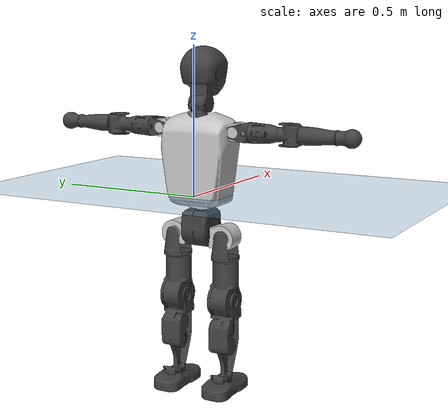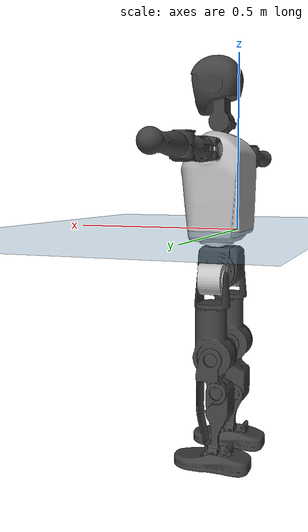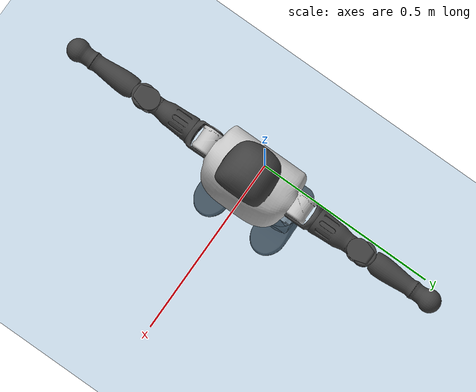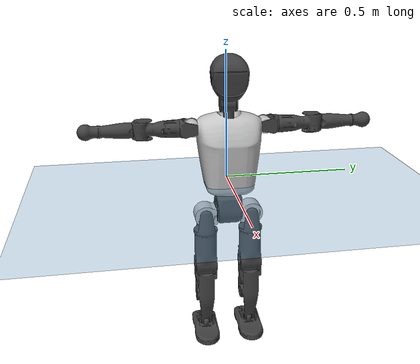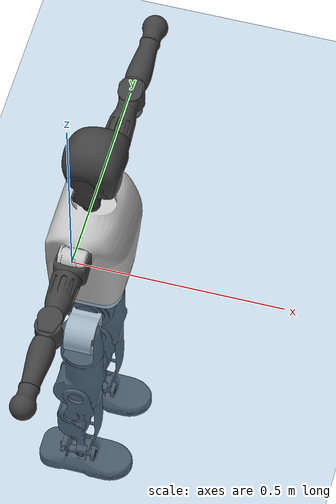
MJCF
<mujoco model="T1">
  <compiler angle="radian" assetdir="assets" balanceinertia="true" inertiafromgeom="false"/>

  <option timestep="0.005" density="1.2" viscosity="2e-05"/>

  <size nkey="1"/>

  <visual>
    <quality shadowsize="8192"/>
    <map shadowclip="0.5"/>
  </visual>

  <default>
    <default class="/">
      <joint armature="0.01" damping="0.01" frictionloss="0.1"/>
      <geom contype="0" conaffinity="0" group="1" solref="-1000 -80"/>
      <site size="0.01 0.005 0.005" group="5"/>
      <general forcelimited="true" biastype="affine" gainprm="25" biasprm="0 -25 -0.6"/>
      <default class="t1">
        <geom rgba="0.25 0.25 0.25 1"/>
        <default class="visual">
          <geom type="mesh" group="2"/>
        </default>
        <default class="collision">
          <geom group="3"/>
        </default>
        <default class="foot">
          <geom size="0.1115 0.05 0.015" type="box" condim="6" group="4" priority="1" solimp="0.015 1 0.015"/>
        </default>
        <default class="reward_collision_sphere">
          <geom group="5" rgba="1 0 0 1"/>
        </default>
      </default>
    </default>
  </default>

  <asset>
    <texture type="skybox" colorspace="auto" name="//unnamed_texture_0" builtin="gradient" rgb1="0.95 0.95 0.95" rgb2="0.95 0.95 0.95" width="100" height="600"/>
    <texture type="2d" colorspace="auto" name="texplane" builtin="checker" rgb1="0.345 0.575 0.748" rgb2="0.345 0.575 0.748" markrgb="1 1 1" width="512" height="512"/>
    <material name="MatPlane" class="/" texture="texplane" texuniform="true" texrepeat="2 2" specular="0.9"/>
    <mesh name="Trunk" class="/" file="Trunk.stl"/>
    <mesh name="H1" class="/" file="H1.stl"/>
    <mesh name="H2" class="/" file="H2.stl"/>
    <mesh name="AL1" class="/" file="AL1.stl"/>
    <mesh name="AL2" class="/" file="AL2.stl"/>
    <mesh name="AL3" class="/" file="AL3.stl"/>
    <mesh name="left_hand_link" class="/" file="left_hand_link.stl"/>
    <mesh name="AR1" class="/" file="AR1.stl"/>
    <mesh name="AR2" class="/" file="AR2.stl"/>
    <mesh name="AR3" class="/" file="AR3.stl"/>
    <mesh name="right_hand_link" class="/" file="right_hand_link.stl"/>
    <mesh name="Waist" class="/" file="Waist.stl"/>
    <mesh name="Hip_Pitch_Left" class="/" file="Hip_Pitch_Left.stl"/>
    <mesh name="Hip_Roll_Left" class="/" file="Hip_Roll_Left.stl"/>
    <mesh name="Hip_Yaw_Left" class="/" file="Hip_Yaw_Left.stl"/>
    <mesh name="Shank_Left" class="/" file="Shank_Left.stl"/>
    <mesh name="Ankle_Cross_Left" class="/" file="Ankle_Cross_Left.stl"/>
    <mesh name="left_foot_link" class="/" file="left_foot_link.stl"/>
    <mesh name="Hip_Pitch_Right" class="/" file="Hip_Pitch_Right.stl"/>
    <mesh name="Hip_Roll_Right" class="/" file="Hip_Roll_Right.stl"/>
    <mesh name="Hip_Yaw_Right" class="/" file="Hip_Yaw_Right.stl"/>
    <mesh name="Shank_Right" class="/" file="Shank_Right.stl"/>
    <mesh name="Ankle_Cross_Right" class="/" file="Ankle_Cross_Right.stl"/>
    <mesh name="right_foot_link" class="/" file="right_foot_link.stl"/>
  </asset>

  <worldbody>
    <geom name="floor" class="/" size="100 100 0.125" type="plane" group="0" material="MatPlane"/>
    <light name="toplight_shadow" class="/" pos="0 0 5" dir="0.0990148 0.0990148 -0.990148" type="directional" ambient="0.04 0.04 0.04" diffuse="0.55 0.55 0.55" specular="0.12 0.12 0.12"/>
    <light name="toplight_fill" class="/" pos="0 0 5" dir="0.0990148 0.0990148 -0.990148" type="directional" castshadow="false" ambient="0.04 0.04 0.04" diffuse="0.3 0.3 0.3" specular="0.08 0.08 0.08"/>
    <body name="trunk" childclass="t1" pos="-4.47475e-05 -0.000169841 0.000769985" quat="1 -4.74266e-05 6.61136e-05 7.77618e-05">
      <inertial pos="0.0439644 -0.00137201 0.107151" quat="0.999953 0.000529771 -0.00967131 -0.000632913" mass="8.66277" diaginertia="0.0314066 0.0416764 0.0600872"/>
      <joint name="//unnamed_joint_0" type="free" armature="0" damping="0" frictionloss="0"/>
      <geom name="//unnamed_geom_1" class="visual" rgba="0.76 0.76 0.76 1" mesh="Trunk"/>
      <geom name="//unnamed_geom_2" class="collision" size="0.067524 0.090032 0.135048" pos="0.0483525 0 0.121665" type="box"/>
      <geom name="//unnamed_geom_3" class="reward_collision_sphere" size="0.103537" pos="0.0483525 0 0.101388"/>
      <geom name="//unnamed_geom_4" class="reward_collision_sphere" size="0.0135048" pos="0.0483525 0.0749028 0"/>
      <geom name="//unnamed_geom_5" class="reward_collision_sphere" size="0.0135048" pos="0.0483525 -0.0749028 0"/>
      <geom name="//unnamed_geom_6" class="reward_collision_sphere" size="0.0135048" pos="0.0483525 0.0942894 0.182498"/>
      <geom name="//unnamed_geom_7" class="reward_collision_sphere" size="0.0135048" pos="0.0483525 -0.0942894 0.182498"/>
      <site name="imu" pos="0.000213832 0.00754669 0.00496432" size="0.0090032"/>
      <camera name="track" pos="0 -1.76242 0" quat="0.707107 0.707107 0 0" mode="trackcom"/>
      <camera name="ego_camera" pos="0.0983167 0 0.425828" quat="-0.5 -0.5 0.5 0.5"/>
      <body name="H1" pos="0.0501541 -7.66215e-05 0.246935" quat="1 -5.93663e-05 -0.000276017 -0.000589603">
        <inertial pos="-0.00066676 -0.00124005 0.0572427" quat="0.764987 -0.0152481 -0.00239084 0.643861" mass="0.320198" diaginertia="8.34945e-05 0.000118745 0.000164094"/>
        <joint name="AAHead_yaw" pos="0 0 0" axis="0.00401984 -0.00396698 0.999984" range="-1.59038 1.61275" armature="0.00886794" damping="0.00478315" frictionloss="0.0901339"/>
        <geom name="//unnamed_geom_8" class="visual" mesh="H1"/>
        <body name="H2" pos="-0.000644155 0.000217093 0.0600976" quat="0.999999 -0.00101982 -0.000548473 2.18096e-05">
          <inertial pos="0.00632459 0.000516221 0.10059" quat="0.988485 0.105908 -0.074571 -0.0782372" mass="0.459916" diaginertia="0.000692881 0.00103238 0.00180574"/>
          <joint name="Head_pitch" pos="0 0 0" axis="-0.00250221 -0.999995 -0.00174709" range="-1.23226 0.343461" armature="0.00906348" damping="0.00955721" frictionloss="0.089386"/>
          <geom name="//unnamed_geom_9" class="visual" mesh="H2"/>
          <geom name="//unnamed_geom_10" class="collision" size="0.0720256" pos="0.00805875 0 0.111526"/>
          <geom name="//unnamed_geom_11" class="reward_collision_sphere" size="0.0810288" pos="0.0161175 0 0.101388"/>
        </body>
      </body>
      <body name="AL1" pos="0.0483256 0.0938968 0.222113" quat="1 0.000209092 0.000429984 -0.000127291">
        <inertial pos="-0.00154964 0.0396332 -0.000161503" quat="0.504558 0.50165 -0.497866 0.49588" mass="0.386326" diaginertia="0.00046573 0.000683388 0.000310118"/>
        <joint name="Left_Shoulder_Pitch" pos="0 0 0" axis="0.000156342 1 -0.000204508" range="-3.26764 1.22431" armature="0.00884641" damping="0.00990858" frictionloss="0.0938926"/>
        <geom name="//unnamed_geom_12" class="visual" rgba="0.76 0.76 0.76 1" mesh="AL1"/>
        <body name="AL2" pos="0.0017379 0.041462 6.05621e-05" quat="1 -0.000548667 0.000649554 4.04457e-06">
          <inertial pos="0.00534914 0.0328206 -0.000330383" quat="0.486305 0.511691 -0.489928 0.511518" mass="0.11437" diaginertia="0.000133979 0.000178526 0.000185245"/>
          <joint name="Left_Shoulder_Roll" pos="0 0 0" axis="-0.999995 -0.0014229 -0.00284905" range="-1.56961 1.74786" armature="0.0090532" damping="0.00952557" frictionloss="0.0880871"/>
          <geom name="//unnamed_geom_13" class="visual" mesh="AL2"/>
          <body name="AL3" pos="0.0012003 0.0545949 -0.000463641" quat="1 0.000241556 0.00064134 -0.000421029">
            <inertial pos="0.00148841 0.0750392 -0.00111396" quat="0.714501 0.699635 0.000239593 -0.00061755" mass="0.764791" diaginertia="0.00454794 0.00720139 0.000687722"/>
            <joint name="Left_Elbow_Pitch" pos="0 0 0" axis="-0.00162151 -0.99999 0.0041906" range="-2.28172 2.31197" armature="0.00952074" damping="0.0104925" frictionloss="0.0998504"/>
            <geom name="//unnamed_geom_14" class="visual" mesh="AL3"/>
            <geom name="//unnamed_geom_15" class="collision" size="0.0270096 0.067524" pos="0 0.0440605 0" quat="0.707105 0.707108 0 0" type="cylinder"/>
            <geom name="//unnamed_geom_16" class="reward_collision_sphere" size="0.0324115"/>
            <body name="left_hand_link" pos="0.0010585 0.128896 0.00106144" quat="0.999999 -9.93562e-05 -0.000394526 -0.000939541">
              <inertial pos="5.98583e-06 0.0971746 0.000734761" quat="0.707091 0.707117 -0.00272457 -0.000887054" mass="0.241271" diaginertia="0.00284904 0.00437762 0.000226663"/>
              <joint name="Left_Elbow_Yaw" pos="0 0 0" axis="0.00436798 -0.0081609 0.999957" range="-2.42977 0.0449361" armature="0.00851932" damping="0.00320048" frictionloss="0.0872567"/>
              <geom name="//unnamed_geom_17" class="visual" mesh="left_hand_link"/>
              <geom name="//unnamed_geom_18" class="collision" size="0.0270096 0.078778" pos="0 0.114557 0" quat="0.707105 0.707108 0 0" type="cylinder"/>
              <geom name="//unnamed_geom_19" class="reward_collision_sphere" size="0.045016"/>
              <geom name="//unnamed_geom_20" class="reward_collision_sphere" size="0.0315112" pos="0 0.096933 0"/>
              <geom name="//unnamed_geom_21" class="reward_collision_sphere" size="0.0315112" pos="0 0.18946 0"/>
            </body>
          </body>
        </body>
      </body>
      <body name="AR1" pos="0.0465367 -0.0908844 0.219897" quat="1 0.000133791 0.000518334 0.000161612">
        <inertial pos="-0.000807051 -0.0414083 5.71159e-05" quat="0.507846 0.494697 -0.502278 0.49506" mass="0.384812" diaginertia="0.000465458 0.000693571 0.000313819"/>
        <joint name="Right_Shoulder_Pitch" pos="0 0 0" axis="0.0048569 -0.999911 0.0124026" range="-1.22446 3.34663" armature="0.00913003" damping="0.00298881" frictionloss="0.0809052"/>
        <geom name="//unnamed_geom_22" class="visual" rgba="0.76 0.76 0.76 1" mesh="AR1"/>
        <body name="AR2" pos="0.00162653 -0.0415298 -0.000587945" quat="1 2.07001e-05 -8.20403e-08 7.33238e-05">
          <inertial pos="0.00386457 -0.0333157 0.000663962" quat="0.515023 0.486425 -0.508587 0.489368" mass="0.122384" diaginertia="0.000139658 0.000189308 0.000192672"/>
          <joint name="Right_Shoulder_Roll" pos="0 0 0" axis="-0.999982 0.00536023 -0.00284687" range="-1.74812 1.58474" armature="0.00899659" damping="0.00167722" frictionloss="0.0950444"/>
          <geom name="//unnamed_geom_23" class="visual" mesh="AR2"/>
          <body name="AR3" pos="-0.0018859 -0.0542959 -9.97301e-05" quat="1 0.000321373 2.55618e-06 -1.35399e-05">
            <inertial pos="-0.000319163 -0.0744423 0.000500955" quat="0.709828 0.704367 -0.00268924 0.00222043" mass="0.775141" diaginertia="0.00450912 0.00698618 0.000685274"/>
            <joint name="Right_Elbow_Pitch" pos="0 0 0" axis="0.00204678 0.999998 9.20268e-05" range="-2.2889 2.24082" armature="0.0088476" damping="0.0140554" frictionloss="0.0892344"/>
            <geom name="//unnamed_geom_24" class="visual" mesh="AR3"/>
            <geom name="//unnamed_geom_25" class="collision" size="0.0270096 0.067524" pos="0 -0.0440605 0" quat="0.707105 0.707108 0 0" type="cylinder"/>
            <geom name="//unnamed_geom_26" class="reward_collision_sphere" size="0.0324115"/>
            <body name="right_hand_link" pos="-0.000300713 -0.129944 0.00065841" quat="1 -3.27995e-05 -2.60807e-05 9.02011e-05">
              <inertial pos="-0.000644452 -0.0966259 -0.000975812" quat="0.706372 0.70784 0.000310574 -0.000141366" mass="0.232233" diaginertia="0.00278543 0.00431079 0.000229463"/>
              <joint name="Right_Elbow_Yaw" pos="0 0 0" axis="-0.00559599 0.000951303 0.999984" range="-0.0216666 2.46659" armature="0.00886699" damping="0.00808409" frictionloss="0.087591"/>
              <geom name="//unnamed_geom_27" class="visual" mesh="right_hand_link"/>
              <geom name="//unnamed_geom_28" class="collision" size="0.0270096 0.078778" pos="0 -0.114557 0" quat="0.707105 0.707108 0 0" type="cylinder"/>
              <geom name="//unnamed_geom_29" class="reward_collision_sphere" size="0.045016"/>
              <geom name="//unnamed_geom_30" class="reward_collision_sphere" size="0.0315112" pos="0 -0.096933 0"/>
              <geom name="//unnamed_geom_31" class="reward_collision_sphere" size="0.0315112" pos="0 -0.18946 0"/>
            </body>
          </body>
        </body>
      </body>
      <body name="Waist" pos="0.048252 -0.00195321 -0.117316" quat="1 -9.53678e-05 -0.000457081 0.000143478">
        <inertial pos="0.00184841 -0.00184749 0.0074437" quat="0.98365 0.000441245 -0.180071 0.00265193" mass="1.84545" diaginertia="0.00176155 0.0027351 0.00499489"/>
        <joint name="Waist" pos="0 0 0" axis="-0.000953259 0.000110517 1" range="-1.56757 1.57443" armature="0.0085663" damping="0.00462706" frictionloss="0.0812381"/>
        <geom name="//unnamed_geom_32" class="visual" mesh="Waist"/>
        <body name="Hip_Pitch_Left" pos="-2.12201e-05 0.0918325 0.00107155" quat="1 0.00051496 0.000456567 0.000535174">
          <inertial pos="0.00108824 -0.00574323 -0.0187245" quat="0.974866 0.222151 0.0168893 -0.000461667" mass="0.743898" diaginertia="0.000622617 0.000804121 0.0013691"/>
          <joint name="Left_Hip_Pitch" pos="0 0 0" axis="-0.00880551 0.999956 0.00318554" range="-1.80185 1.55374" armature="0.00950609" damping="0.014507" frictionloss="0.0854874"/>
          <geom name="//unnamed_geom_33" class="visual" rgba="0.76 0.76 0.76 1" mesh="Hip_Pitch_Left"/>
          <body name="Hip_Roll_Left" pos="0.00199186 -0.000436234 -0.0207476" quat="0.999999 -0.000337397 0.000593592 -0.00103519">
            <inertial pos="-0.000500781 -0.00118921 -0.0552625" quat="0.71091 -0.0093197 -0.0152238 0.703056" mass="0.281692" diaginertia="0.000581351 0.000805703 0.000556783"/>
            <joint name="Left_Hip_Roll" pos="0 0 0" axis="-0.99995 0.00756866 -0.00657012" range="-1.58076 0.23828" armature="0.00971426" damping="0.0103256" frictionloss="0.0876049"/>
            <geom name="//unnamed_geom_34" class="visual" mesh="Hip_Roll_Left"/>
            <geom name="//unnamed_geom_35" class="reward_collision_sphere" size="0.0495176"/>
            <body name="Hip_Yaw_Left" pos="0.00261632 -0.00131456 -0.0822715" quat="0.999999 0.000332213 0.000802113 -0.00075717">
              <inertial pos="-0.00552833 -0.000465288 -0.0900784" quat="0.696684 -0.0340533 -0.0315209 0.715876" mass="1.58529" diaginertia="0.0087824 0.0135396 0.00282771"/>
              <joint name="Left_Hip_Yaw" pos="0 0 0" axis="0.00129987 0.00664045 -0.999977" range="-1.016 0.967693" armature="0.00912536" damping="0.0134682" frictionloss="0.0865245"/>
              <geom name="//unnamed_geom_36" class="visual" mesh="Hip_Yaw_Left"/>
              <geom name="//unnamed_geom_37" class="collision" size="0.045016 0.0720256" type="cylinder"/>
              <body name="Shank_Left" pos="-0.0113436 -0.000122345 -0.13858" quat="1 -7.81037e-05 -0.00012771 -8.60362e-05">
                <inertial pos="-0.00348882 -0.00110977 -0.125608" quat="0.997465 0.00131933 -0.0242885 0.0668695" mass="1.2661" diaginertia="0.0118513 0.0181832 0.00196967"/>
                <joint name="Left_Knee_Pitch" pos="0 0 0" axis="1.4536e-05 1 0.000213857" range="-0.0106758 2.32281" armature="0.00893651" damping="0.0131513" frictionloss="0.0922989"/>
                <geom name="//unnamed_geom_38" class="visual" mesh="Shank_Left"/>
                <geom name="//unnamed_geom_39" class="collision" size="0.045016 0.067524" pos="0 0 -0.121665" type="cylinder"/>
                <geom name="//unnamed_geom_40" class="reward_collision_sphere" size="0.0585208"/>
                <body name="Ankle_Cross_Left" pos="-0.0010928 -0.000816466 -0.282378" quat="1 6.08074e-05 3.6278e-05 -0.00011029">
                  <inertial pos="-0.00225764 -0.000694271 -0.00754357" quat="0.443526 0.551893 0.55051 0.442308" mass="0.0550945" diaginertia="9.88135e-06 1.39718e-05 1.22928e-05"/>
                  <joint name="Left_Ankle_Pitch" pos="0 0 0" axis="0.00260616 0.999996 -0.00058575" range="-0.850748 0.329402" armature="0.0092037" damping="0.00598621" frictionloss="0.0878829"/>
                  <geom name="//unnamed_geom_41" class="visual" mesh="Ankle_Cross_Left"/>
                  <body name="left_foot_link" pos="-0.00123199 0.000557278 -0.011928" quat="1 2.07866e-06 0.00016608 4.85425e-05">
                    <inertial pos="-0.00103137 0.00117498 -0.0089425" quat="-4.66932e-06 0.620735 1.52085e-05 0.78402" mass="0.483139" diaginertia="0.000933816 0.00124615 0.00229475"/>
                    <joint name="Left_Ankle_Roll" pos="0 0 0" axis="-0.999995 0.00309717 0.000268193" range="-0.421055 0.480112" armature="0.00991217" damping="0.0109829" frictionloss="0.0854513"/>
                    <geom name="//unnamed_geom_42" class="visual" mesh="left_foot_link"/>
                    <geom name="left_foot" class="foot" size="0.10764 0.0462336 0.014305" pos="0.00805875 0 -0.0152081"/>
                    <geom name="//unnamed_geom_44" class="reward_collision_sphere" size="0.0468166" pos="0.00805875 0 -0.0152081"/>
                    <geom name="//unnamed_geom_45" class="reward_collision_sphere" size="0.0270096" pos="0.0765581 -0.0202678 -0.0152081"/>
                    <geom name="//unnamed_geom_46" class="reward_collision_sphere" size="0.0270096" pos="-0.0564112 -0.0202678 -0.0152081"/>
                    <site name="left_foot" class="foot" pos="0.00805875 0 -0.0152081" size="0.0090032"/>
                  </body>
                </body>
              </body>
            </body>
          </body>
        </body>
        <body name="Hip_Pitch_Right" pos="0.000568834 -0.0926048 -0.000961898" quat="1 -9.67059e-05 4.93129e-05 -0.000179771">
          <inertial pos="-0.0011452 0.00694938 -0.0182075" quat="0.973402 -0.22845 0.0168823 -0.00380916" mass="0.761635" diaginertia="0.000622098 0.000782995 0.00135054"/>
          <joint name="Right_Hip_Pitch" pos="0 0 0" axis="0.00360759 -0.999987 -0.00369976" range="-1.58234 1.80381" armature="0.0101142" damping="0.0109198" frictionloss="0.0933439"/>
          <geom name="//unnamed_geom_47" class="visual" rgba="0.76 0.76 0.76 1" mesh="Hip_Pitch_Right"/>
          <body name="Hip_Roll_Right" pos="9.13284e-05 6.35967e-06 -0.0185486" quat="1 -2.59116e-05 -0.000167925 -0.00014323">
            <inertial pos="0.00117523 -0.00245111 -0.0550335" quat="0.707843 0.00191696 -0.00349049 0.706359" mass="0.272347" diaginertia="0.000577315 0.00078274 0.000535707"/>
            <joint name="Right_Hip_Roll" pos="0 0 0" axis="-0.999999 -0.00146091 0.000159059" range="-0.212856 1.56957" armature="0.00914985" damping="0.00328675" frictionloss="0.0862094"/>
            <geom name="//unnamed_geom_48" class="visual" mesh="Hip_Roll_Right"/>
            <geom name="//unnamed_geom_49" class="reward_collision_sphere" size="0.0495176"/>
            <body name="Hip_Yaw_Right" pos="0.00139188 -0.000712803 -0.0833531" quat="1 -0.000551852 -0.000293348 5.20243e-06">
              <inertial pos="-0.00570812 -0.00278836 -0.0915078" quat="0.717818 -0.0302737 -0.0320754 0.694833" mass="1.52991" diaginertia="0.00849721 0.0130425 0.00272382"/>
              <joint name="Right_Hip_Yaw" pos="0 0 0" axis="0.00166849 -0.00384356 -0.999991" range="-0.99753 1.02806" armature="0.00915312" damping="0.00493907" frictionloss="0.0896044"/>
              <geom name="//unnamed_geom_50" class="visual" mesh="Hip_Yaw_Right"/>
              <geom name="//unnamed_geom_51" class="collision" size="0.045016 0.0720256" type="cylinder"/>
              <body name="Shank_Right" pos="-0.0108113 -0.00164213 -0.135736" quat="1 -6.09118e-07 -2.40148e-06 1.82076e-06">
                <inertial pos="-0.00467741 -0.000117418 -0.123513" quat="0.999304 0.000262035 -0.0233848 -0.0290629" mass="1.29198" diaginertia="0.0114403 0.0185639 0.00207698"/>
                <joint name="Right_Knee_Pitch" pos="0 0 0" axis="-0.00244797 -0.999997 0.000454602" range="-2.35477 -0.0219161" armature="0.00898447" damping="0.00400501" frictionloss="0.0896148"/>
                <geom name="//unnamed_geom_52" class="visual" mesh="Shank_Right"/>
                <geom name="//unnamed_geom_53" class="collision" size="0.045016 0.067524" pos="0 0 -0.121665" type="cylinder"/>
                <geom name="//unnamed_geom_54" class="reward_collision_sphere" size="0.0585208"/>
                <body name="Ankle_Cross_Right" pos="0.000903126 -0.00140132 -0.283774" quat="1 -0.000454474 -1.07877e-05 0.000188195">
                  <inertial pos="-0.00219829 -0.00015152 -0.0100477" quat="0.451288 0.546829 0.546965 0.445137" mass="0.0524" diaginertia="9.38479e-06 1.35171e-05 1.16005e-05"/>
                  <joint name="Right_Ankle_Pitch" pos="0 0 0" axis="-0.00262021 -0.999973 -0.00687235" range="-0.341222 0.848509" armature="0.00910233" damping="0.00267392" frictionloss="0.0854199"/>
                  <geom name="//unnamed_geom_55" class="visual" mesh="Ankle_Cross_Right"/>
                  <body name="right_foot_link" pos="-0.000999816 -0.000461394 -0.0123881" quat="1 -0.000494518 -1.83196e-05 9.32854e-05">
                    <inertial pos="-0.00235059 -0.000723341 -0.00902026" quat="0.00197917 0.620943 0.000894052 0.783853" mass="0.498033" diaginertia="0.000925866 0.0012794 0.00235202"/>
                    <joint name="Right_Ankle_Roll" pos="0 0 0" axis="-0.999999 -0.00119976 0.00028396" range="-0.432155 0.449738" armature="0.0086931" damping="0.0192334" frictionloss="0.0897941"/>
                    <geom name="//unnamed_geom_56" class="visual" mesh="right_foot_link"/>
                    <geom name="right_foot" class="foot" size="0.0952798 0.0455322 0.0136704" pos="0.00805875 0 -0.0152081"/>
                    <geom name="//unnamed_geom_58" class="reward_collision_sphere" size="0.0360128"/>
                    <geom name="//unnamed_geom_59" class="reward_collision_sphere" size="0.0270096" pos="0.00805875 0 -0.0152081"/>
                    <geom name="//unnamed_geom_60" class="reward_collision_sphere" size="0.0270096" pos="0.0765581 0.0202678 -0.0152081"/>
                    <geom name="//unnamed_geom_61" class="reward_collision_sphere" size="0.0270096" pos="-0.0564112 0.0202678 -0.0152081"/>
                    <site name="right_foot" class="foot" pos="0.00805875 0 -0.0152081" size="0.0090032"/>
                  </body>
                </body>
              </body>
            </body>
          </body>
        </body>
      </body>
    </body>
  </worldbody>

  <contact>
    <pair class="/" geom1="floor" geom2="left_foot" name="//unnamed_contact_0"/>
    <pair class="/" geom1="floor" geom2="right_foot" name="//unnamed_contact_1"/>
  </contact>

  <actuator>
    <general name="AAHead_yaw" class="/" joint="AAHead_yaw" forcerange="-6.3852 6.3852" gainprm="22.3088" biasprm="0 -22.3088 -0.530129"/>
    <general name="Head_pitch" class="/" joint="Head_pitch" forcerange="-6.4346 6.4346" gainprm="22.3088" biasprm="0 -22.3088 -0.530129"/>
    <general name="Left_Shoulder_Pitch" class="/" joint="Left_Shoulder_Pitch" forcerange="-16.7333 16.7333" gainprm="22.3088" biasprm="0 -22.3088 -0.530129"/>
    <general name="Left_Shoulder_Roll" class="/" joint="Left_Shoulder_Roll" forcerange="-16.4531 16.4531" gainprm="22.3088" biasprm="0 -22.3088 -0.530129"/>
    <general name="Left_Elbow_Pitch" class="/" joint="Left_Elbow_Pitch" forcerange="-17.3704 17.3704" gainprm="22.3088" biasprm="0 -22.3088 -0.530129"/>
    <general name="Left_Elbow_Yaw" class="/" joint="Left_Elbow_Yaw" forcerange="-16.249 16.249" gainprm="22.3088" biasprm="0 -22.3088 -0.530129"/>
    <general name="Right_Shoulder_Pitch" class="/" joint="Right_Shoulder_Pitch" forcerange="-15.0391 15.0391" gainprm="22.3088" biasprm="0 -22.3088 -0.530129"/>
    <general name="Right_Shoulder_Roll" class="/" joint="Right_Shoulder_Roll" forcerange="-16.2989 16.2989" gainprm="22.3088" biasprm="0 -22.3088 -0.530129"/>
    <general name="Right_Elbow_Pitch" class="/" joint="Right_Elbow_Pitch" forcerange="-17.4162 17.4162" gainprm="22.3088" biasprm="0 -22.3088 -0.530129"/>
    <general name="Right_Elbow_Yaw" class="/" joint="Right_Elbow_Yaw" forcerange="-15.5591 15.5591" gainprm="22.3088" biasprm="0 -22.3088 -0.530129"/>
    <general name="Waist" class="/" joint="Waist" forcerange="-27.3486 27.3486" gainprm="22.3088" biasprm="0 -22.3088 -0.530129"/>
    <general name="Left_Hip_Pitch" class="/" joint="Left_Hip_Pitch" forcerange="-41.9598 41.9598" gainprm="22.3088" biasprm="0 -22.3088 -0.530129"/>
    <general name="Left_Hip_Roll" class="/" joint="Left_Hip_Roll" forcerange="-28.6708 28.6708" gainprm="22.3088" biasprm="0 -22.3088 -0.530129"/>
    <general name="Left_Hip_Yaw" class="/" joint="Left_Hip_Yaw" forcerange="-24.7448 24.7448" gainprm="22.3088" biasprm="0 -22.3088 -0.530129"/>
    <general name="Left_Knee_Pitch" class="/" joint="Left_Knee_Pitch" forcerange="-55.1938 55.1938" gainprm="22.3088" biasprm="0 -22.3088 -0.530129"/>
    <general name="Left_Ankle_Pitch" class="/" joint="Left_Ankle_Pitch" forcerange="-16.3682 16.3682" gainprm="22.3088" biasprm="0 -22.3088 -0.530129"/>
    <general name="Left_Ankle_Roll" class="/" joint="Left_Ankle_Roll" forcerange="-13.2734 13.2734" gainprm="22.3088" biasprm="0 -22.3088 -0.530129"/>
    <general name="Right_Hip_Pitch" class="/" joint="Right_Hip_Pitch" forcerange="-40.2188 40.2188" gainprm="22.3088" biasprm="0 -22.3088 -0.530129"/>
    <general name="Right_Hip_Roll" class="/" joint="Right_Hip_Roll" forcerange="-27.4002 27.4002" gainprm="22.3088" biasprm="0 -22.3088 -0.530129"/>
    <general name="Right_Hip_Yaw" class="/" joint="Right_Hip_Yaw" forcerange="-27.5227 27.5227" gainprm="22.3088" biasprm="0 -22.3088 -0.530129"/>
    <general name="Right_Knee_Pitch" class="/" joint="Right_Knee_Pitch" forcerange="-56.6397 56.6397" gainprm="22.3088" biasprm="0 -22.3088 -0.530129"/>
    <general name="Right_Ankle_Pitch" class="/" joint="Right_Ankle_Pitch" forcerange="-17.8853 17.8853" gainprm="22.3088" biasprm="0 -22.3088 -0.530129"/>
    <general name="Right_Ankle_Roll" class="/" joint="Right_Ankle_Roll" forcerange="-12.5304 12.5304" gainprm="22.3088" biasprm="0 -22.3088 -0.530129"/>
  </actuator>

  <sensor>
    <gyro site="imu" name="imu_angular_velocity"/>
    <velocimeter site="imu" name="imu_linear_velocity"/>
    <framelinvel objtype="site" objname="left_foot" name="left_foot_global_linear_velocity"/>
    <framelinvel objtype="site" objname="right_foot" name="right_foot_global_linear_velocity"/>
  </sensor>

  <keyframe>
    <key name="home" qpos="0 0 0.6385 1 0 0 0 0 0 0 1.4 0 -0.4 0 -1.4 0 0.4 0 -0.4 0 0 0.8 -0.4 0 0.4 0 0 -0.8 0.4 0"/>
  </keyframe>
</mujoco>
